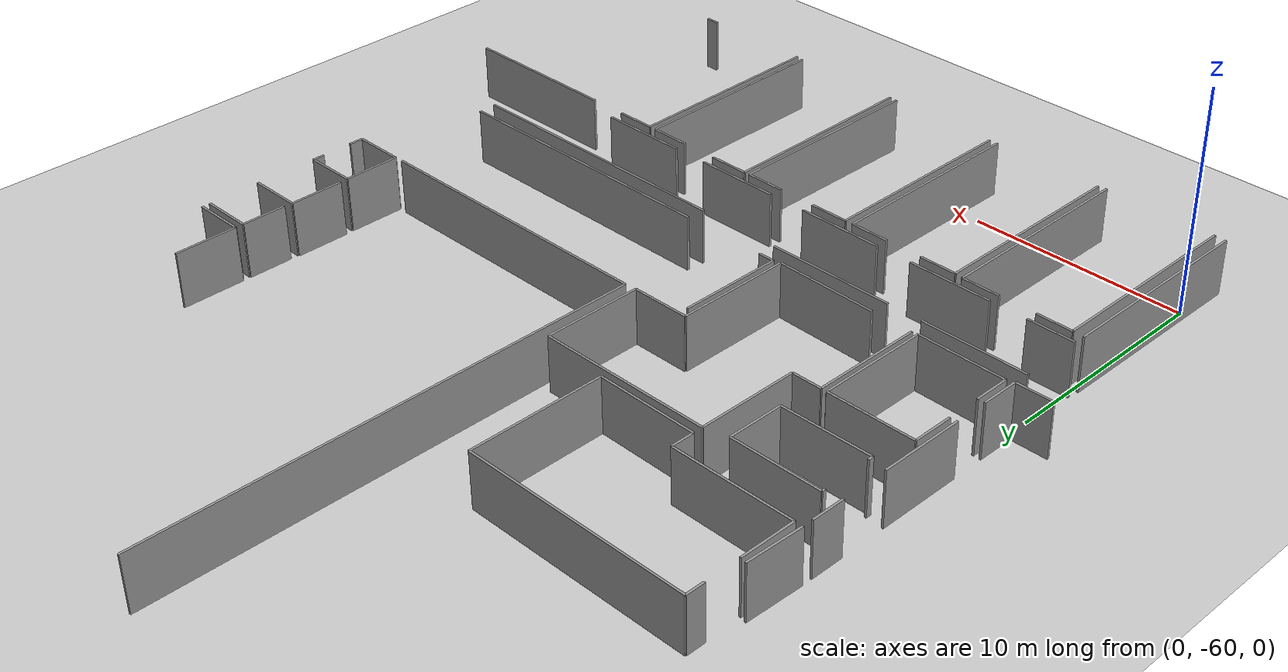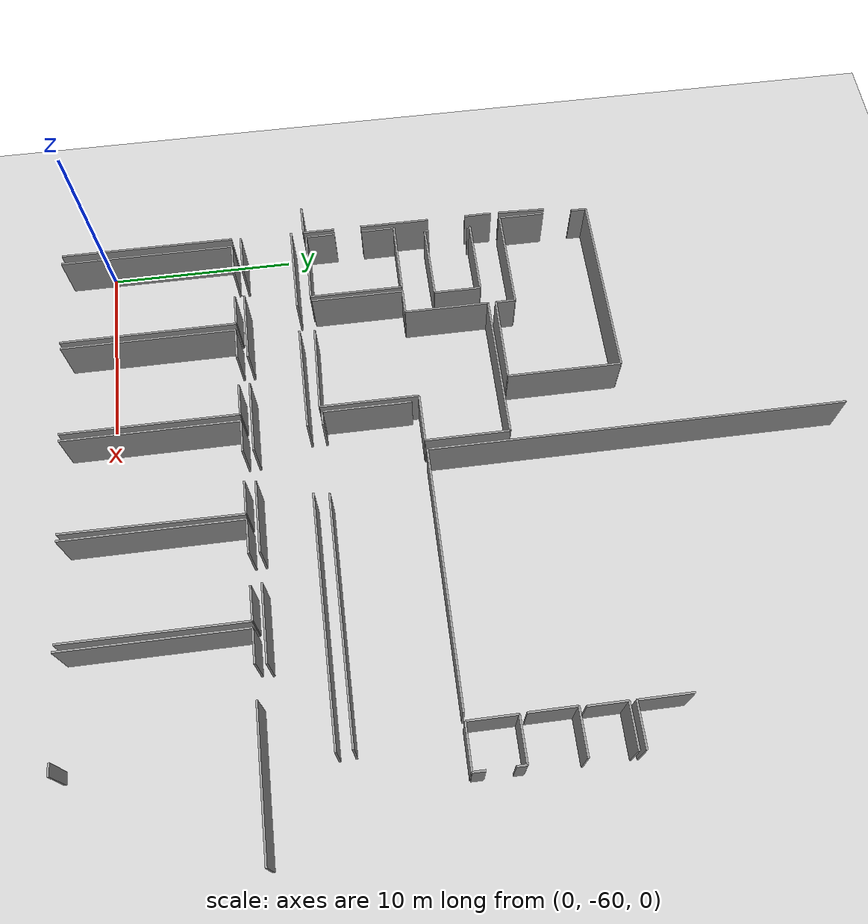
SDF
<sdf version="1.6">
 <world name="default">
  <model name="ground_plane">
   <static>1</static>
   <link name="link">
    <collision name="collision">
     <geometry><plane><normal>0 0 1</normal><size>100 100</size></plane></geometry>
     <surface><friction><ode><mu>100</mu><mu2>50</mu2></ode></friction></surface>
    </collision>
    <visual name="visual">
     <cast_shadows>0</cast_shadows>
     <geometry><plane><normal>0 0 1</normal><size>100 100</size></plane></geometry>
     <material>
      <script><uri>file://media/materials/scripts/gazebo.material</uri><name>Gazebo/Grey</name></script>
     </material>
    </visual>
   </link>
  </model>
  <model name="0510045904_A_40_1_102">
   <static>1</static>
   <link name="Wall_435">
    <collision name="Wall_435_Collision">
     <geometry><box><size>2.58362755462 0.1 2.5</size></box></geometry>
     <pose>1.29181377731 0 1.25 0 0 0</pose>
    </collision>
    <visual name="Wall_435_Visual">
     <pose>1.29181377731 0 1.25 0 0 0</pose>
     <geometry><box><size>2.58362755462 0.1 2.5</size></box></geometry>
     <material>
      <script><uri>file://media/materials/scripts/gazebo.material</uri><name>Gazebo/Grey</name></script>
      <ambient>1 1 1 1</ambient>
     </material>
    </visual>
    <pose>84.2543197024 -97.6101666942 0 0 0 -1.60579039413</pose>
   </link>
   <link name="Wall_436">
    <collision name="Wall_436_Collision">
     <geometry><box><size>1.70020440032 0.1 2.5</size></box></geometry>
     <pose>0.85010220016 0 1.25 0 0 0</pose>
    </collision>
    <visual name="Wall_436_Visual">
     <pose>0.85010220016 0 1.25 0 0 0</pose>
     <geometry><box><size>1.70020440032 0.1 2.5</size></box></geometry>
     <material>
      <script><uri>file://media/materials/scripts/gazebo.material</uri><name>Gazebo/Grey</name></script>
      <ambient>1 1 1 1</ambient>
     </material>
    </visual>
    <pose>84.157324768 -111.300417688 0 0 0 3.14159265359</pose>
   </link>
   <link name="Wall_440">
    <collision name="Wall_440_Collision">
     <geometry><box><size>1.50621453147 0.1 2.5</size></box></geometry>
     <pose>0.753107265733 0 1.25 0 0 0</pose>
    </collision>
    <visual name="Wall_440_Visual">
     <pose>0.753107265733 0 1.25 0 0 0</pose>
     <geometry><box><size>1.50621453147 0.1 2.5</size></box></geometry>
     <material>
      <script><uri>file://media/materials/scripts/gazebo.material</uri><name>Gazebo/Grey</name></script>
      <ambient>1 1 1 1</ambient>
     </material>
    </visual>
    <pose>84.1588482486 -100.636053169 0 0 0 -1.57079632679</pose>
   </link>
   <link name="Wall_441">
    <collision name="Wall_441_Collision">
     <geometry><box><size>3.82342859319 0.1 2.5</size></box></geometry>
     <pose>1.9117142966 0 1.25 0 0 0</pose>
    </collision>
    <visual name="Wall_441_Visual">
     <pose>1.9117142966 0 1.25 0 0 0</pose>
     <geometry><box><size>3.82342859319 0.1 2.5</size></box></geometry>
     <material>
      <script><uri>file://media/materials/scripts/gazebo.material</uri><name>Gazebo/Grey</name></script>
      <ambient>1 1 1 1</ambient>
     </material>
    </visual>
    <pose>84.1588482486 -104.24974926 0 0 0 -1.57079632679</pose>
   </link>
   <link name="Wall_442">
    <collision name="Wall_442_Collision">
     <geometry><box><size>1.72229554349 0.1 2.5</size></box></geometry>
     <pose>0.861147771744 0 1.25 0 0 0</pose>
    </collision>
    <visual name="Wall_442_Visual">
     <pose>0.861147771744 0 1.25 0 0 0</pose>
     <geometry><box><size>1.72229554349 0.1 2.5</size></box></geometry>
     <material>
      <script><uri>file://media/materials/scripts/gazebo.material</uri><name>Gazebo/Grey</name></script>
      <ambient>1 1 1 1</ambient>
     </material>
    </visual>
    <pose>84.1588482486 -109.578122818 0 0 0 -1.57168089092</pose>
   </link>
   <link name="Wall_451">
    <collision name="Wall_451_Collision">
     <geometry><box><size>5.01123566976 0.1 2.5</size></box></geometry>
     <pose>2.50561783488 0 1.25 0 0 0</pose>
    </collision>
    <visual name="Wall_451_Visual">
     <pose>2.50561783488 0 1.25 0 0 0</pose>
     <geometry><box><size>5.01123566976 0.1 2.5</size></box></geometry>
     <material>
      <script><uri>file://media/materials/scripts/gazebo.material</uri><name>Gazebo/Grey</name></script>
      <ambient>1 1 1 1</ambient>
     </material>
    </visual>
    <pose>88.5147333274 -111.222720175 0 0 0 1.57079632679</pose>
   </link>
   <link name="Wall_452">
    <collision name="Wall_452_Collision">
     <geometry><box><size>4.03189152818 0.1 2.5</size></box></geometry>
     <pose>2.01594576409 0 1.25 0 0 0</pose>
    </collision>
    <visual name="Wall_452_Visual">
     <pose>2.01594576409 0 1.25 0 0 0</pose>
     <geometry><box><size>4.03189152818 0.1 2.5</size></box></geometry>
     <material>
      <script><uri>file://media/materials/scripts/gazebo.material</uri><name>Gazebo/Grey</name></script>
      <ambient>1 1 1 1</ambient>
     </material>
    </visual>
    <pose>88.5147333274 -106.211484505 0 0 0 3.14159265359</pose>
   </link>
   <link name="Wall_453">
    <collision name="Wall_453_Collision">
     <geometry><box><size>1.84315766755 0.1 2.5</size></box></geometry>
     <pose>0.921578833776 0 1.25 0 0 0</pose>
    </collision>
    <visual name="Wall_453_Visual">
     <pose>0.921578833776 0 1.25 0 0 0</pose>
     <geometry><box><size>1.84315766755 0.1 2.5</size></box></geometry>
     <material>
      <script><uri>file://media/materials/scripts/gazebo.material</uri><name>Gazebo/Grey</name></script>
      <ambient>1 1 1 1</ambient>
     </material>
    </visual>
    <pose>84.4828417992 -106.211484505 0 0 0 -1.57079632679</pose>
   </link>
   <link name="Wall_454">
    <collision name="Wall_454_Collision">
     <geometry><box><size>1.60270163901 0.1 2.5</size></box></geometry>
     <pose>0.801350819506 0 1.25 0 0 0</pose>
    </collision>
    <visual name="Wall_454_Visual">
     <pose>0.801350819506 0 1.25 0 0 0</pose>
     <geometry><box><size>1.60270163901 0.1 2.5</size></box></geometry>
     <material>
      <script><uri>file://media/materials/scripts/gazebo.material</uri><name>Gazebo/Grey</name></script>
      <ambient>1 1 1 1</ambient>
     </material>
    </visual>
    <pose>84.4828417992 -109.575583684 0 0 0 -1.57079632679</pose>
   </link>
   <link name="Wall_455">
    <collision name="Wall_455_Collision">
     <geometry><box><size>4.03213637556 0.1 2.5</size></box></geometry>
     <pose>2.01606818778 0 1.25 0 0 0</pose>
    </collision>
    <visual name="Wall_455_Visual">
     <pose>2.01606818778 0 1.25 0 0 0</pose>
     <geometry><box><size>4.03213637556 0.1 2.5</size></box></geometry>
     <material>
      <script><uri>file://media/materials/scripts/gazebo.material</uri><name>Gazebo/Grey</name></script>
      <ambient>1 1 1 1</ambient>
     </material>
    </visual>
    <pose>84.4828417992 -111.178285323 0 0 0 -0.0110203989802</pose>
   </link>
   <link name="Wall_456">
    <collision name="Wall_456_Collision">
     <geometry><box><size>2.52593091015 0.1 2.5</size></box></geometry>
     <pose>1.26296545508 0 1.25 0 0 0</pose>
    </collision>
    <visual name="Wall_456_Visual">
     <pose>1.26296545508 0 1.25 0 0 0</pose>
     <geometry><box><size>2.52593091015 0.1 2.5</size></box></geometry>
     <material>
      <script><uri>file://media/materials/scripts/gazebo.material</uri><name>Gazebo/Grey</name></script>
      <ambient>1 1 1 1</ambient>
     </material>
    </visual>
    <pose>89.1050820775 -104.466845252 0 0 0 1.57079632679</pose>
   </link>
   <link name="Wall_457">
    <collision name="Wall_457_Collision">
     <geometry><box><size>4.16646565186 0.1 2.5</size></box></geometry>
     <pose>2.08323282593 0 1.25 0 0 0</pose>
    </collision>
    <visual name="Wall_457_Visual">
     <pose>2.08323282593 0 1.25 0 0 0</pose>
     <geometry><box><size>4.16646565186 0.1 2.5</size></box></geometry>
     <material>
      <script><uri>file://media/materials/scripts/gazebo.material</uri><name>Gazebo/Grey</name></script>
      <ambient>1 1 1 1</ambient>
     </material>
    </visual>
    <pose>89.1050820775 -101.940914342 0 0 0 3.14159265359</pose>
   </link>
   <link name="Wall_458">
    <collision name="Wall_458_Collision">
     <geometry><box><size>0.159711554331 0.1 2.5</size></box></geometry>
     <pose>0.0798557771656 0 1.25 0 0 0</pose>
    </collision>
    <visual name="Wall_458_Visual">
     <pose>0.0798557771656 0 1.25 0 0 0</pose>
     <geometry><box><size>0.159711554331 0.1 2.5</size></box></geometry>
     <material>
      <script><uri>file://media/materials/scripts/gazebo.material</uri><name>Gazebo/Grey</name></script>
      <ambient>1 1 1 1</ambient>
     </material>
    </visual>
    <pose>84.9386164257 -101.940914342 0 0 0 -1.57079632679</pose>
   </link>
   <link name="Wall_459">
    <collision name="Wall_459_Collision">
     <geometry><box><size>0.232330798431 0.1 2.5</size></box></geometry>
     <pose>0.116165399215 0 1.25 0 0 0</pose>
    </collision>
    <visual name="Wall_459_Visual">
     <pose>0.116165399215 0 1.25 0 0 0</pose>
     <geometry><box><size>0.232330798431 0.1 2.5</size></box></geometry>
     <material>
      <script><uri>file://media/materials/scripts/gazebo.material</uri><name>Gazebo/Grey</name></script>
      <ambient>1 1 1 1</ambient>
     </material>
    </visual>
    <pose>84.9386164257 -104.278187566 0 0 0 -1.57079632679</pose>
   </link>
   <link name="Wall_460">
    <collision name="Wall_460_Collision">
     <geometry><box><size>4.1666945375 0.1 2.5</size></box></geometry>
     <pose>2.08334726875 0 1.25 0 0 0</pose>
    </collision>
    <visual name="Wall_460_Visual">
     <pose>2.08334726875 0 1.25 0 0 0</pose>
     <geometry><box><size>4.1666945375 0.1 2.5</size></box></geometry>
     <material>
      <script><uri>file://media/materials/scripts/gazebo.material</uri><name>Gazebo/Grey</name></script>
      <ambient>1 1 1 1</ambient>
     </material>
    </visual>
    <pose>84.9386164257 -104.510518364 0 0 0 0.0104816686578</pose>
   </link>
   <link name="Wall_470">
    <collision name="Wall_470_Collision">
     <geometry><box><size>6.06472253609 0.1 2.5</size></box></geometry>
     <pose>3.03236126804 0 1.25 0 0 0</pose>
    </collision>
    <visual name="Wall_470_Visual">
     <pose>3.03236126804 0 1.25 0 0 0</pose>
     <geometry><box><size>6.06472253609 0.1 2.5</size></box></geometry>
     <material>
      <script><uri>file://media/materials/scripts/gazebo.material</uri><name>Gazebo/Grey</name></script>
      <ambient>1 1 1 1</ambient>
     </material>
    </visual>
    <pose>94.8282910356 -101.284040271 0 0 0 1.57079632679</pose>
   </link>
   <link name="Wall_471">
    <collision name="Wall_471_Collision">
     <geometry><box><size>10.2961900288 0.1 2.5</size></box></geometry>
     <pose>5.14809501441 0 1.25 0 0 0</pose>
    </collision>
    <visual name="Wall_471_Visual">
     <pose>5.14809501441 0 1.25 0 0 0</pose>
     <geometry><box><size>10.2961900288 0.1 2.5</size></box></geometry>
     <material>
      <script><uri>file://media/materials/scripts/gazebo.material</uri><name>Gazebo/Grey</name></script>
      <ambient>1 1 1 1</ambient>
     </material>
    </visual>
    <pose>94.8282910356 -95.2193177346 0 0 0 3.14159265359</pose>
   </link>
   <link name="Wall_472">
    <collision name="Wall_472_Collision">
     <geometry><box><size>0.841976970051 0.1 2.5</size></box></geometry>
     <pose>0.420988485025 0 1.25 0 0 0</pose>
    </collision>
    <visual name="Wall_472_Visual">
     <pose>0.420988485025 0 1.25 0 0 0</pose>
     <geometry><box><size>0.841976970051 0.1 2.5</size></box></geometry>
     <material>
      <script><uri>file://media/materials/scripts/gazebo.material</uri><name>Gazebo/Grey</name></script>
      <ambient>1 1 1 1</ambient>
     </material>
    </visual>
    <pose>84.5321010068 -95.2193177346 0 0 0 -1.57079632679</pose>
   </link>
   <link name="Wall_473">
    <collision name="Wall_473_Collision">
     <geometry><box><size>2.50434826768 0.1 2.5</size></box></geometry>
     <pose>1.25217413384 0 1.25 0 0 0</pose>
    </collision>
    <visual name="Wall_473_Visual">
     <pose>1.25217413384 0 1.25 0 0 0</pose>
     <geometry><box><size>2.50434826768 0.1 2.5</size></box></geometry>
     <material>
      <script><uri>file://media/materials/scripts/gazebo.material</uri><name>Gazebo/Grey</name></script>
      <ambient>1 1 1 1</ambient>
     </material>
    </visual>
    <pose>84.5321010068 -97.6718676603 0 0 0 -1.57079632679</pose>
   </link>
   <link name="Wall_474">
    <collision name="Wall_474_Collision">
     <geometry><box><size>5.62189749514 0.1 2.5</size></box></geometry>
     <pose>2.81094874757 0 1.25 0 0 0</pose>
    </collision>
    <visual name="Wall_474_Visual">
     <pose>2.81094874757 0 1.25 0 0 0</pose>
     <geometry><box><size>5.62189749514 0.1 2.5</size></box></geometry>
     <material>
      <script><uri>file://media/materials/scripts/gazebo.material</uri><name>Gazebo/Grey</name></script>
      <ambient>1 1 1 1</ambient>
     </material>
    </visual>
    <pose>84.5321010068 -100.176215928 0 0 0 0.0</pose>
   </link>
   <link name="Wall_475">
    <collision name="Wall_475_Collision">
     <geometry><box><size>1.05170947224 0.1 2.5</size></box></geometry>
     <pose>0.52585473612 0 1.25 0 0 0</pose>
    </collision>
    <visual name="Wall_475_Visual">
     <pose>0.52585473612 0 1.25 0 0 0</pose>
     <geometry><box><size>1.05170947224 0.1 2.5</size></box></geometry>
     <material>
      <script><uri>file://media/materials/scripts/gazebo.material</uri><name>Gazebo/Grey</name></script>
      <ambient>1 1 1 1</ambient>
     </material>
    </visual>
    <pose>90.1539985019 -100.176215928 0 0 0 -1.57079632679</pose>
   </link>
   <link name="Wall_476">
    <collision name="Wall_476_Collision">
     <geometry><box><size>4.67462935098 0.1 2.5</size></box></geometry>
     <pose>2.33731467549 0 1.25 0 0 0</pose>
    </collision>
    <visual name="Wall_476_Visual">
     <pose>2.33731467549 0 1.25 0 0 0</pose>
     <geometry><box><size>4.67462935098 0.1 2.5</size></box></geometry>
     <material>
      <script><uri>file://media/materials/scripts/gazebo.material</uri><name>Gazebo/Grey</name></script>
      <ambient>1 1 1 1</ambient>
     </material>
    </visual>
    <pose>90.1539985019 -101.2279254 0 0 0 -0.0120044208855</pose>
   </link>
   <link name="Wall_477">
    <collision name="Wall_477_Collision">
     <geometry><box><size>13.5663412343 0.1 2.5</size></box></geometry>
     <pose>6.78317061714 0 1.25 0 0 0</pose>
    </collision>
    <visual name="Wall_477_Visual">
     <pose>6.78317061714 0 1.25 0 0 0</pose>
     <geometry><box><size>13.5663412343 0.1 2.5</size></box></geometry>
     <material>
      <script><uri>file://media/materials/scripts/gazebo.material</uri><name>Gazebo/Grey</name></script>
      <ambient>1 1 1 1</ambient>
     </material>
    </visual>
    <pose>112.144172052 -106.02587378 0 0 0 3.14159265359</pose>
   </link>
   <link name="Wall_478">
    <collision name="Wall_478_Collision">
     <geometry><box><size>21.9934744246 0.1 2.5</size></box></geometry>
     <pose>10.9967372123 0 1.25 0 0 0</pose>
    </collision>
    <visual name="Wall_478_Visual">
     <pose>10.9967372123 0 1.25 0 0 0</pose>
     <geometry><box><size>21.9934744246 0.1 2.5</size></box></geometry>
     <material>
      <script><uri>file://media/materials/scripts/gazebo.material</uri><name>Gazebo/Grey</name></script>
      <ambient>1 1 1 1</ambient>
     </material>
    </visual>
    <pose>98.5778308175 -106.02587378 0 0 0 1.57079632679</pose>
   </link>
   <link name="Wall_497">
    <collision name="Wall_497_Collision">
     <geometry><box><size>2.40659159293 0.1 2.5</size></box></geometry>
     <pose>1.20329579646 0 1.25 0 0 0</pose>
    </collision>
    <visual name="Wall_497_Visual">
     <pose>1.20329579646 0 1.25 0 0 0</pose>
     <geometry><box><size>2.40659159293 0.1 2.5</size></box></geometry>
     <material>
      <script><uri>file://media/materials/scripts/gazebo.material</uri><name>Gazebo/Grey</name></script>
      <ambient>1 1 1 1</ambient>
     </material>
    </visual>
    <pose>112.529358742 -103.13100664 0 0 0 1.57079632679</pose>
   </link>
   <link name="Wall_498">
    <collision name="Wall_498_Collision">
     <geometry><box><size>2.38450112357 0.1 2.5</size></box></geometry>
     <pose>1.19225056178 0 1.25 0 0 0</pose>
    </collision>
    <visual name="Wall_498_Visual">
     <pose>1.19225056178 0 1.25 0 0 0</pose>
     <geometry><box><size>2.38450112357 0.1 2.5</size></box></geometry>
     <material>
      <script><uri>file://media/materials/scripts/gazebo.material</uri><name>Gazebo/Grey</name></script>
      <ambient>1 1 1 1</ambient>
     </material>
    </visual>
    <pose>112.529358742 -100.724415047 0 0 0 0.0</pose>
   </link>
   <link name="Wall_502">
    <collision name="Wall_502_Collision">
     <geometry><box><size>2.51171175746 0.1 2.5</size></box></geometry>
     <pose>1.25585587873 0 1.25 0 0 0</pose>
    </collision>
    <visual name="Wall_502_Visual">
     <pose>1.25585587873 0 1.25 0 0 0</pose>
     <geometry><box><size>2.51171175746 0.1 2.5</size></box></geometry>
     <material>
      <script><uri>file://media/materials/scripts/gazebo.material</uri><name>Gazebo/Grey</name></script>
      <ambient>1 1 1 1</ambient>
     </material>
    </visual>
    <pose>112.551195298 -106.005814618 0 0 0 1.57079632679</pose>
   </link>
   <link name="Wall_503">
    <collision name="Wall_503_Collision">
     <geometry><box><size>2.30832709129 0.1 2.5</size></box></geometry>
     <pose>1.15416354565 0 1.25 0 0 0</pose>
    </collision>
    <visual name="Wall_503_Visual">
     <pose>1.15416354565 0 1.25 0 0 0</pose>
     <geometry><box><size>2.30832709129 0.1 2.5</size></box></geometry>
     <material>
      <script><uri>file://media/materials/scripts/gazebo.material</uri><name>Gazebo/Grey</name></script>
      <ambient>1 1 1 1</ambient>
     </material>
    </visual>
    <pose>112.551195298 -103.49410286 0 0 0 0.0</pose>
   </link>
   <link name="Wall_504">
    <collision name="Wall_504_Collision">
     <geometry><box><size>0.508334708698 0.1 2.5</size></box></geometry>
     <pose>0.254167354349 0 1.25 0 0 0</pose>
    </collision>
    <visual name="Wall_504_Visual">
     <pose>0.254167354349 0 1.25 0 0 0</pose>
     <geometry><box><size>0.508334708698 0.1 2.5</size></box></geometry>
     <material>
      <script><uri>file://media/materials/scripts/gazebo.material</uri><name>Gazebo/Grey</name></script>
      <ambient>1 1 1 1</ambient>
     </material>
    </visual>
    <pose>114.859522389 -103.49410286 0 0 0 -1.57079632679</pose>
   </link>
   <link name="Wall_505">
    <collision name="Wall_505_Collision">
     <geometry><box><size>0.638846217325 0.1 2.5</size></box></geometry>
     <pose>0.319423108662 0 1.25 0 0 0</pose>
    </collision>
    <visual name="Wall_505_Visual">
     <pose>0.319423108662 0 1.25 0 0 0</pose>
     <geometry><box><size>0.638846217325 0.1 2.5</size></box></geometry>
     <material>
      <script><uri>file://media/materials/scripts/gazebo.material</uri><name>Gazebo/Grey</name></script>
      <ambient>1 1 1 1</ambient>
     </material>
    </visual>
    <pose>114.859522389 -105.381441467 0 0 0 -1.57079632679</pose>
   </link>
   <link name="Wall_506">
    <collision name="Wall_506_Collision">
     <geometry><box><size>2.30837246346 0.1 2.5</size></box></geometry>
     <pose>1.15418623173 0 1.25 0 0 0</pose>
    </collision>
    <visual name="Wall_506_Visual">
     <pose>1.15418623173 0 1.25 0 0 0</pose>
     <geometry><box><size>2.30837246346 0.1 2.5</size></box></geometry>
     <material>
      <script><uri>file://media/materials/scripts/gazebo.material</uri><name>Gazebo/Grey</name></script>
      <ambient>1 1 1 1</ambient>
     </material>
    </visual>
    <pose>114.859522389 -106.020287684 0 0 0 3.13532279845</pose>
   </link>
   <link name="Wall_510">
    <collision name="Wall_510_Collision">
     <geometry><box><size>2.76486345805 0.1 2.5</size></box></geometry>
     <pose>1.38243172902 0 1.25 0 0 0</pose>
    </collision>
    <visual name="Wall_510_Visual">
     <pose>1.38243172902 0 1.25 0 0 0</pose>
     <geometry><box><size>2.76486345805 0.1 2.5</size></box></geometry>
     <material>
      <script><uri>file://media/materials/scripts/gazebo.material</uri><name>Gazebo/Grey</name></script>
      <ambient>1 1 1 1</ambient>
     </material>
    </visual>
    <pose>112.590805794 -95.2678152018 0 0 0 -1.57079632679</pose>
   </link>
   <link name="Wall_511">
    <collision name="Wall_511_Collision">
     <geometry><box><size>2.30096449813 0.1 2.5</size></box></geometry>
     <pose>1.15048224907 0 1.25 0 0 0</pose>
    </collision>
    <visual name="Wall_511_Visual">
     <pose>1.15048224907 0 1.25 0 0 0</pose>
     <geometry><box><size>2.30096449813 0.1 2.5</size></box></geometry>
     <material>
      <script><uri>file://media/materials/scripts/gazebo.material</uri><name>Gazebo/Grey</name></script>
      <ambient>1 1 1 1</ambient>
     </material>
    </visual>
    <pose>112.590805794 -98.0326786598 0 0 0 0.000882807097961</pose>
   </link>
   <link name="Wall_512">
    <collision name="Wall_512_Collision">
     <geometry><box><size>1.98204831973 0.1 2.5</size></box></geometry>
     <pose>0.991024159864 0 1.25 0 0 0</pose>
    </collision>
    <visual name="Wall_512_Visual">
     <pose>0.991024159864 0 1.25 0 0 0</pose>
     <geometry><box><size>1.98204831973 0.1 2.5</size></box></geometry>
     <material>
      <script><uri>file://media/materials/scripts/gazebo.material</uri><name>Gazebo/Grey</name></script>
      <ambient>1 1 1 1</ambient>
     </material>
    </visual>
    <pose>112.58014143 -100.369190143 0 0 0 1.57079632679</pose>
   </link>
   <link name="Wall_513">
    <collision name="Wall_513_Collision">
     <geometry><box><size>2.31010448538 0.1 2.5</size></box></geometry>
     <pose>1.15505224269 0 1.25 0 0 0</pose>
    </collision>
    <visual name="Wall_513_Visual">
     <pose>1.15505224269 0 1.25 0 0 0</pose>
     <geometry><box><size>2.31010448538 0.1 2.5</size></box></geometry>
     <material>
      <script><uri>file://media/materials/scripts/gazebo.material</uri><name>Gazebo/Grey</name></script>
      <ambient>1 1 1 1</ambient>
     </material>
    </visual>
    <pose>112.58014143 -98.3871418234 0 0 0 0.0</pose>
   </link>
   <link name="Wall_656">
    <collision name="Wall_656_Collision">
     <geometry><box><size>4.87793111328 0.1 2.5</size></box></geometry>
     <pose>2.43896555664 0 1.25 0 0 0</pose>
    </collision>
    <visual name="Wall_656_Visual">
     <pose>2.43896555664 0 1.25 0 0 0</pose>
     <geometry><box><size>4.87793111328 0.1 2.5</size></box></geometry>
     <material>
      <script><uri>file://media/materials/scripts/gazebo.material</uri><name>Gazebo/Grey</name></script>
      <ambient>1 1 1 1</ambient>
     </material>
    </visual>
    <pose>84.1111125217 -112.001472698 0 0 0 0.0</pose>
   </link>
   <link name="Wall_657">
    <collision name="Wall_657_Collision">
     <geometry><box><size>5.80700039357 0.1 2.5</size></box></geometry>
     <pose>2.90350019678 0 1.25 0 0 0</pose>
    </collision>
    <visual name="Wall_657_Visual">
     <pose>2.90350019678 0 1.25 0 0 0</pose>
     <geometry><box><size>5.80700039357 0.1 2.5</size></box></geometry>
     <material>
      <script><uri>file://media/materials/scripts/gazebo.material</uri><name>Gazebo/Grey</name></script>
      <ambient>1 1 1 1</ambient>
     </material>
    </visual>
    <pose>90.6265314154 -112.001472698 0 0 0 0.0</pose>
   </link>
   <link name="Wall_658">
    <collision name="Wall_658_Collision">
     <geometry><box><size>12.9241941422 0.1 2.5</size></box></geometry>
     <pose>6.46209707111 0 1.25 0 0 0</pose>
    </collision>
    <visual name="Wall_658_Visual">
     <pose>6.46209707111 0 1.25 0 0 0</pose>
     <geometry><box><size>12.9241941422 0.1 2.5</size></box></geometry>
     <material>
      <script><uri>file://media/materials/scripts/gazebo.material</uri><name>Gazebo/Grey</name></script>
      <ambient>1 1 1 1</ambient>
     </material>
    </visual>
    <pose>100.287430015 -112.001472698 0 0 0 0.0</pose>
   </link>
   <link name="Wall_670">
    <collision name="Wall_670_Collision">
     <geometry><box><size>4.02960630721 0.1 2.5</size></box></geometry>
     <pose>2.0148031536 0 1.25 0 0 0</pose>
    </collision>
    <visual name="Wall_670_Visual">
     <pose>2.0148031536 0 1.25 0 0 0</pose>
     <geometry><box><size>4.02960630721 0.1 2.5</size></box></geometry>
     <material>
      <script><uri>file://media/materials/scripts/gazebo.material</uri><name>Gazebo/Grey</name></script>
      <ambient>1 1 1 1</ambient>
     </material>
    </visual>
    <pose>108.716086686 -114.833115391 0 0 0 3.14159265359</pose>
   </link>
   <link name="Wall_671">
    <collision name="Wall_671_Collision">
     <geometry><box><size>3.85669125395 0.1 2.5</size></box></geometry>
     <pose>1.92834562698 0 1.25 0 0 0</pose>
    </collision>
    <visual name="Wall_671_Visual">
     <pose>1.92834562698 0 1.25 0 0 0</pose>
     <geometry><box><size>3.85669125395 0.1 2.5</size></box></geometry>
     <material>
      <script><uri>file://media/materials/scripts/gazebo.material</uri><name>Gazebo/Grey</name></script>
      <ambient>1 1 1 1</ambient>
     </material>
    </visual>
    <pose>103.092919624 -114.833115391 0 0 0 3.14159265359</pose>
   </link>
   <link name="Wall_672">
    <collision name="Wall_672_Collision">
     <geometry><box><size>3.91280612439 0.1 2.5</size></box></geometry>
     <pose>1.9564030622 0 1.25 0 0 0</pose>
    </collision>
    <visual name="Wall_672_Visual">
     <pose>1.9564030622 0 1.25 0 0 0</pose>
     <geometry><box><size>3.91280612439 0.1 2.5</size></box></geometry>
     <material>
      <script><uri>file://media/materials/scripts/gazebo.material</uri><name>Gazebo/Grey</name></script>
      <ambient>1 1 1 1</ambient>
     </material>
    </visual>
    <pose>97.4740690898 -114.833115391 0 0 0 3.14159265359</pose>
   </link>
   <link name="Wall_673">
    <collision name="Wall_673_Collision">
     <geometry><box><size>3.86405474374 0.1 2.5</size></box></geometry>
     <pose>1.93202737187 0 1.25 0 0 0</pose>
    </collision>
    <visual name="Wall_673_Visual">
     <pose>1.93202737187 0 1.25 0 0 0</pose>
     <geometry><box><size>3.86405474374 0.1 2.5</size></box></geometry>
     <material>
      <script><uri>file://media/materials/scripts/gazebo.material</uri><name>Gazebo/Grey</name></script>
      <ambient>1 1 1 1</ambient>
     </material>
    </visual>
    <pose>91.885180342 -114.833115391 0 0 0 3.14159265359</pose>
   </link>
   <link name="Wall_674">
    <collision name="Wall_674_Collision">
     <geometry><box><size>2.16080338213 0.1 2.5</size></box></geometry>
     <pose>1.08040169106 0 1.25 0 0 0</pose>
    </collision>
    <visual name="Wall_674_Visual">
     <pose>1.08040169106 0 1.25 0 0 0</pose>
     <geometry><box><size>2.16080338213 0.1 2.5</size></box></geometry>
     <material>
      <script><uri>file://media/materials/scripts/gazebo.material</uri><name>Gazebo/Grey</name></script>
      <ambient>1 1 1 1</ambient>
     </material>
    </visual>
    <pose>86.2904515851 -114.833115391 0 0 0 3.14159265359</pose>
   </link>
   <link name="Wall_696">
    <collision name="Wall_696_Collision">
     <geometry><box><size>4.70120735841 0.1 2.5</size></box></geometry>
     <pose>2.35060367921 0 1.25 0 0 0</pose>
    </collision>
    <visual name="Wall_696_Visual">
     <pose>2.35060367921 0 1.25 0 0 0</pose>
     <geometry><box><size>4.70120735841 0.1 2.5</size></box></geometry>
     <material>
      <script><uri>file://media/materials/scripts/gazebo.material</uri><name>Gazebo/Grey</name></script>
      <ambient>1 1 1 1</ambient>
     </material>
    </visual>
    <pose>95.7235898282 -106.495867559 0 0 0 -1.57079632679</pose>
   </link>
   <link name="Wall_697">
    <collision name="Wall_697_Collision">
     <geometry><box><size>0.738634199601 0.1 2.5</size></box></geometry>
     <pose>0.369317099801 0 1.25 0 0 0</pose>
    </collision>
    <visual name="Wall_697_Visual">
     <pose>0.369317099801 0 1.25 0 0 0</pose>
     <geometry><box><size>0.738634199601 0.1 2.5</size></box></geometry>
     <material>
      <script><uri>file://media/materials/scripts/gazebo.material</uri><name>Gazebo/Grey</name></script>
      <ambient>1 1 1 1</ambient>
     </material>
    </visual>
    <pose>95.7235898282 -111.197074917 0 0 0 0.0</pose>
   </link>
   <link name="Wall_698">
    <collision name="Wall_698_Collision">
     <geometry><box><size>12.8226287659 0.1 2.5</size></box></geometry>
     <pose>6.41131438293 0 1.25 0 0 0</pose>
    </collision>
    <visual name="Wall_698_Visual">
     <pose>6.41131438293 0 1.25 0 0 0</pose>
     <geometry><box><size>12.8226287659 0.1 2.5</size></box></geometry>
     <material>
      <script><uri>file://media/materials/scripts/gazebo.material</uri><name>Gazebo/Grey</name></script>
      <ambient>1 1 1 1</ambient>
     </material>
    </visual>
    <pose>100.363604047 -111.197074917 0 0 0 0.0</pose>
   </link>
   <link name="Wall_700">
    <collision name="Wall_700_Collision">
     <geometry><box><size>5.20522553861 0.1 2.5</size></box></geometry>
     <pose>2.60261276931 0 1.25 0 0 0</pose>
    </collision>
    <visual name="Wall_700_Visual">
     <pose>2.60261276931 0 1.25 0 0 0</pose>
     <geometry><box><size>5.20522553861 0.1 2.5</size></box></geometry>
     <material>
      <script><uri>file://media/materials/scripts/gazebo.material</uri><name>Gazebo/Grey</name></script>
      <ambient>1 1 1 1</ambient>
     </material>
    </visual>
    <pose>95.4122919497 -111.288229842 0 0 0 1.57079632679</pose>
   </link>
   <link name="Wall_701">
    <collision name="Wall_701_Collision">
     <geometry><box><size>2.64069978544 0.1 2.5</size></box></geometry>
     <pose>1.32034989272 0 1.25 0 0 0</pose>
    </collision>
    <visual name="Wall_701_Visual">
     <pose>1.32034989272 0 1.25 0 0 0</pose>
     <geometry><box><size>2.64069978544 0.1 2.5</size></box></geometry>
     <material>
      <script><uri>file://media/materials/scripts/gazebo.material</uri><name>Gazebo/Grey</name></script>
      <ambient>1 1 1 1</ambient>
     </material>
    </visual>
    <pose>95.4122919497 -106.083004304 0 0 0 0.0</pose>
   </link>
   <link name="Wall_702">
    <collision name="Wall_702_Collision">
     <geometry><box><size>4.4180938718 0.1 2.5</size></box></geometry>
     <pose>2.2090469359 0 1.25 0 0 0</pose>
    </collision>
    <visual name="Wall_702_Visual">
     <pose>2.2090469359 0 1.25 0 0 0</pose>
     <geometry><box><size>4.4180938718 0.1 2.5</size></box></geometry>
     <material>
      <script><uri>file://media/materials/scripts/gazebo.material</uri><name>Gazebo/Grey</name></script>
      <ambient>1 1 1 1</ambient>
     </material>
    </visual>
    <pose>98.0529917351 -106.083004304 0 0 0 1.57079632679</pose>
   </link>
   <link name="Wall_703">
    <collision name="Wall_703_Collision">
     <geometry><box><size>7.89670801224 0.1 2.5</size></box></geometry>
     <pose>3.94835400612 0 1.25 0 0 0</pose>
    </collision>
    <visual name="Wall_703_Visual">
     <pose>3.94835400612 0 1.25 0 0 0</pose>
     <geometry><box><size>7.89670801224 0.1 2.5</size></box></geometry>
     <material>
      <script><uri>file://media/materials/scripts/gazebo.material</uri><name>Gazebo/Grey</name></script>
      <ambient>1 1 1 1</ambient>
     </material>
    </visual>
    <pose>98.0529917351 -101.664910432 0 0 0 3.14159265359</pose>
   </link>
   <link name="Wall_704">
    <collision name="Wall_704_Collision">
     <geometry><box><size>4.54505059225 0.1 2.5</size></box></geometry>
     <pose>2.27252529613 0 1.25 0 0 0</pose>
    </collision>
    <visual name="Wall_704_Visual">
     <pose>2.27252529613 0 1.25 0 0 0</pose>
     <geometry><box><size>4.54505059225 0.1 2.5</size></box></geometry>
     <material>
      <script><uri>file://media/materials/scripts/gazebo.material</uri><name>Gazebo/Grey</name></script>
      <ambient>1 1 1 1</ambient>
     </material>
    </visual>
    <pose>90.1562837229 -101.664910432 0 0 0 -1.57079632679</pose>
   </link>
   <link name="Wall_705">
    <collision name="Wall_705_Collision">
     <geometry><box><size>1.3711325809 0.1 2.5</size></box></geometry>
     <pose>0.685566290452 0 1.25 0 0 0</pose>
    </collision>
    <visual name="Wall_705_Visual">
     <pose>0.685566290452 0 1.25 0 0 0</pose>
     <geometry><box><size>1.3711325809 0.1 2.5</size></box></geometry>
     <material>
      <script><uri>file://media/materials/scripts/gazebo.material</uri><name>Gazebo/Grey</name></script>
      <ambient>1 1 1 1</ambient>
     </material>
    </visual>
    <pose>90.1562837229 -106.209961024 0 0 0 3.14159265359</pose>
   </link>
   <link name="Wall_706">
    <collision name="Wall_706_Collision">
     <geometry><box><size>4.9767034418 0.1 2.5</size></box></geometry>
     <pose>2.4883517209 0 1.25 0 0 0</pose>
    </collision>
    <visual name="Wall_706_Visual">
     <pose>2.4883517209 0 1.25 0 0 0</pose>
     <geometry><box><size>4.9767034418 0.1 2.5</size></box></geometry>
     <material>
      <script><uri>file://media/materials/scripts/gazebo.material</uri><name>Gazebo/Grey</name></script>
      <ambient>1 1 1 1</ambient>
     </material>
    </visual>
    <pose>88.785151142 -106.209961024 0 0 0 -1.57079632679</pose>
   </link>
   <link name="Wall_707">
    <collision name="Wall_707_Collision">
     <geometry><box><size>4.71372779068 0.1 2.5</size></box></geometry>
     <pose>2.35686389534 0 1.25 0 0 0</pose>
    </collision>
    <visual name="Wall_707_Visual">
     <pose>2.35686389534 0 1.25 0 0 0</pose>
     <geometry><box><size>4.71372779068 0.1 2.5</size></box></geometry>
     <material>
      <script><uri>file://media/materials/scripts/gazebo.material</uri><name>Gazebo/Grey</name></script>
      <ambient>1 1 1 1</ambient>
     </material>
    </visual>
    <pose>90.6996584864 -111.186664466 0 0 0 -0.0215483883088</pose>
   </link>
   <link name="Wall_773">
    <collision name="Wall_773_Collision">
     <geometry><box><size>9.4364588494 0.1 2.5</size></box></geometry>
     <pose>4.7182294247 0 1.25 0 0 0</pose>
    </collision>
    <visual name="Wall_773_Visual">
     <pose>4.7182294247 0 1.25 0 0 0</pose>
     <geometry><box><size>9.4364588494 0.1 2.5</size></box></geometry>
     <material>
      <script><uri>file://media/materials/scripts/gazebo.material</uri><name>Gazebo/Grey</name></script>
      <ambient>1 1 1 1</ambient>
     </material>
    </visual>
    <pose>84.101463811 -115.32596138 0 0 0 -1.57284131372</pose>
   </link>
   <link name="Wall_774">
    <collision name="Wall_774_Collision">
     <geometry><box><size>9.44456434801 0.1 2.5</size></box></geometry>
     <pose>4.72228217401 0 1.25 0 0 0</pose>
    </collision>
    <visual name="Wall_774_Visual">
     <pose>4.72228217401 0 1.25 0 0 0</pose>
     <geometry><box><size>9.44456434801 0.1 2.5</size></box></geometry>
     <material>
      <script><uri>file://media/materials/scripts/gazebo.material</uri><name>Gazebo/Grey</name></script>
      <ambient>1 1 1 1</ambient>
     </material>
    </visual>
    <pose>84.6054819912 -124.796678812 0 0 0 1.57079632679</pose>
   </link>
   <link name="Wall_775">
    <collision name="Wall_775_Collision">
     <geometry><box><size>1.65856259601 0.1 2.5</size></box></geometry>
     <pose>0.829281298005 0 1.25 0 0 0</pose>
    </collision>
    <visual name="Wall_775_Visual">
     <pose>0.829281298005 0 1.25 0 0 0</pose>
     <geometry><box><size>1.65856259601 0.1 2.5</size></box></geometry>
     <material>
      <script><uri>file://media/materials/scripts/gazebo.material</uri><name>Gazebo/Grey</name></script>
      <ambient>1 1 1 1</ambient>
     </material>
    </visual>
    <pose>84.6054819912 -115.352114464 0 0 0 0.0</pose>
   </link>
   <link name="Wall_776">
    <collision name="Wall_776_Collision">
     <geometry><box><size>1.75479579012 0.1 2.5</size></box></geometry>
     <pose>0.877397895058 0 1.25 0 0 0</pose>
    </collision>
    <visual name="Wall_776_Visual">
     <pose>0.877397895058 0 1.25 0 0 0</pose>
     <geometry><box><size>1.75479579012 0.1 2.5</size></box></geometry>
     <material>
      <script><uri>file://media/materials/scripts/gazebo.material</uri><name>Gazebo/Grey</name></script>
      <ambient>1 1 1 1</ambient>
     </material>
    </visual>
    <pose>87.9886246778 -115.352114464 0 0 0 0.0</pose>
   </link>
   <link name="Wall_777">
    <collision name="Wall_777_Collision">
     <geometry><box><size>9.44458406253 0.1 2.5</size></box></geometry>
     <pose>4.72229203127 0 1.25 0 0 0</pose>
    </collision>
    <visual name="Wall_777_Visual">
     <pose>4.72229203127 0 1.25 0 0 0</pose>
     <geometry><box><size>9.44458406253 0.1 2.5</size></box></geometry>
     <material>
      <script><uri>file://media/materials/scripts/gazebo.material</uri><name>Gazebo/Grey</name></script>
      <ambient>1 1 1 1</ambient>
     </material>
    </visual>
    <pose>89.743420468 -115.352114464 0 0 0 -1.56875309918</pose>
   </link>
   <link name="Wall_778">
    <collision name="Wall_778_Collision">
     <geometry><box><size>9.33512765498 0.1 2.5</size></box></geometry>
     <pose>4.66756382749 0 1.25 0 0 0</pose>
    </collision>
    <visual name="Wall_778_Visual">
     <pose>4.66756382749 0 1.25 0 0 0</pose>
     <geometry><box><size>9.33512765498 0.1 2.5</size></box></geometry>
     <material>
      <script><uri>file://media/materials/scripts/gazebo.material</uri><name>Gazebo/Grey</name></script>
      <ambient>1 1 1 1</ambient>
     </material>
    </visual>
    <pose>90.1347010804 -124.747927432 0 0 0 1.57079632679</pose>
   </link>
   <link name="Wall_779">
    <collision name="Wall_779_Collision">
     <geometry><box><size>1.72077138903 0.1 2.5</size></box></geometry>
     <pose>0.860385694517 0 1.25 0 0 0</pose>
    </collision>
    <visual name="Wall_779_Visual">
     <pose>0.860385694517 0 1.25 0 0 0</pose>
     <geometry><box><size>1.72077138903 0.1 2.5</size></box></geometry>
     <material>
      <script><uri>file://media/materials/scripts/gazebo.material</uri><name>Gazebo/Grey</name></script>
      <ambient>1 1 1 1</ambient>
     </material>
    </visual>
    <pose>90.1347010804 -115.412799777 0 0 0 0.0</pose>
   </link>
   <link name="Wall_780">
    <collision name="Wall_780_Collision">
     <geometry><box><size>1.76749146216 0.1 2.5</size></box></geometry>
     <pose>0.88374573108 0 1.25 0 0 0</pose>
    </collision>
    <visual name="Wall_780_Visual">
     <pose>0.88374573108 0 1.25 0 0 0</pose>
     <geometry><box><size>1.76749146216 0.1 2.5</size></box></geometry>
     <material>
      <script><uri>file://media/materials/scripts/gazebo.material</uri><name>Gazebo/Grey</name></script>
      <ambient>1 1 1 1</ambient>
     </material>
    </visual>
    <pose>93.5683725418 -115.412799777 0 0 0 0.0</pose>
   </link>
   <link name="Wall_781">
    <collision name="Wall_781_Collision">
     <geometry><box><size>9.33514315636 0.1 2.5</size></box></geometry>
     <pose>4.66757157818 0 1.25 0 0 0</pose>
    </collision>
    <visual name="Wall_781_Visual">
     <pose>4.66757157818 0 1.25 0 0 0</pose>
     <geometry><box><size>9.33514315636 0.1 2.5</size></box></geometry>
     <material>
      <script><uri>file://media/materials/scripts/gazebo.material</uri><name>Gazebo/Grey</name></script>
      <ambient>1 1 1 1</ambient>
     </material>
    </visual>
    <pose>95.335864004 -115.412799777 0 0 0 -1.5726187102</pose>
   </link>
   <link name="Wall_782">
    <collision name="Wall_782_Collision">
     <geometry><box><size>9.33258852057 0.1 2.5</size></box></geometry>
     <pose>4.66629426029 0 1.25 0 0 0</pose>
    </collision>
    <visual name="Wall_782_Visual">
     <pose>4.66629426029 0 1.25 0 0 0</pose>
     <geometry><box><size>9.33258852057 0.1 2.5</size></box></geometry>
     <material>
      <script><uri>file://media/materials/scripts/gazebo.material</uri><name>Gazebo/Grey</name></script>
      <ambient>1 1 1 1</ambient>
     </material>
    </visual>
    <pose>95.713687204 -124.734977846 0 0 0 1.57079632679</pose>
   </link>
   <link name="Wall_783">
    <collision name="Wall_783_Collision">
     <geometry><box><size>1.75555753044 0.1 2.5</size></box></geometry>
     <pose>0.877778765219 0 1.25 0 0 0</pose>
    </collision>
    <visual name="Wall_783_Visual">
     <pose>0.877778765219 0 1.25 0 0 0</pose>
     <geometry><box><size>1.75555753044 0.1 2.5</size></box></geometry>
     <material>
      <script><uri>file://media/materials/scripts/gazebo.material</uri><name>Gazebo/Grey</name></script>
      <ambient>1 1 1 1</ambient>
     </material>
    </visual>
    <pose>95.713687204 -115.402389325 0 0 0 0.0</pose>
   </link>
   <link name="Wall_784">
    <collision name="Wall_784_Collision">
     <geometry><box><size>1.80481673797 0.1 2.5</size></box></geometry>
     <pose>0.902408368987 0 1.25 0 0 0</pose>
    </collision>
    <visual name="Wall_784_Visual">
     <pose>0.902408368987 0 1.25 0 0 0</pose>
     <geometry><box><size>1.80481673797 0.1 2.5</size></box></geometry>
     <material>
      <script><uri>file://media/materials/scripts/gazebo.material</uri><name>Gazebo/Grey</name></script>
      <ambient>1 1 1 1</ambient>
     </material>
    </visual>
    <pose>99.1895082966 -115.402389325 0 0 0 0.0</pose>
   </link>
   <link name="Wall_785">
    <collision name="Wall_785_Collision">
     <geometry><box><size>9.33300922815 0.1 2.5</size></box></geometry>
     <pose>4.66650461407 0 1.25 0 0 0</pose>
    </collision>
    <visual name="Wall_785_Visual">
     <pose>4.66650461407 0 1.25 0 0 0</pose>
     <geometry><box><size>9.33300922815 0.1 2.5</size></box></geometry>
     <material>
      <script><uri>file://media/materials/scripts/gazebo.material</uri><name>Gazebo/Grey</name></script>
      <ambient>1 1 1 1</ambient>
     </material>
    </visual>
    <pose>100.994325035 -115.402389325 0 0 0 -1.5802913482</pose>
   </link>
   <link name="Wall_786">
    <collision name="Wall_786_Collision">
     <geometry><box><size>9.3793085937 0.1 2.5</size></box></geometry>
     <pose>4.68965429685 0 1.25 0 0 0</pose>
    </collision>
    <visual name="Wall_786_Visual">
     <pose>4.68965429685 0 1.25 0 0 0</pose>
     <geometry><box><size>9.3793085937 0.1 2.5</size></box></geometry>
     <material>
      <script><uri>file://media/materials/scripts/gazebo.material</uri><name>Gazebo/Grey</name></script>
      <ambient>1 1 1 1</ambient>
     </material>
    </visual>
    <pose>101.263219369 -124.771033555 0 0 0 1.57079632679</pose>
   </link>
   <link name="Wall_787">
    <collision name="Wall_787_Collision">
     <geometry><box><size>1.8236063326 0.1 2.5</size></box></geometry>
     <pose>0.911803166301 0 1.25 0 0 0</pose>
    </collision>
    <visual name="Wall_787_Visual">
     <pose>0.911803166301 0 1.25 0 0 0</pose>
     <geometry><box><size>1.8236063326 0.1 2.5</size></box></geometry>
     <material>
      <script><uri>file://media/materials/scripts/gazebo.material</uri><name>Gazebo/Grey</name></script>
      <ambient>1 1 1 1</ambient>
     </material>
    </visual>
    <pose>101.263219369 -115.391724961 0 0 0 0.0</pose>
   </link>
   <link name="Wall_788">
    <collision name="Wall_788_Collision">
     <geometry><box><size>1.80481673797 0.1 2.5</size></box></geometry>
     <pose>0.902408368987 0 1.25 0 0 0</pose>
    </collision>
    <visual name="Wall_788_Visual">
     <pose>0.902408368987 0 1.25 0 0 0</pose>
     <geometry><box><size>1.80481673797 0.1 2.5</size></box></geometry>
     <material>
      <script><uri>file://media/materials/scripts/gazebo.material</uri><name>Gazebo/Grey</name></script>
      <ambient>1 1 1 1</ambient>
     </material>
    </visual>
    <pose>104.757322229 -115.391724961 0 0 0 0.0</pose>
   </link>
   <link name="Wall_789">
    <collision name="Wall_789_Collision">
     <geometry><box><size>9.37935170644 0.1 2.5</size></box></geometry>
     <pose>4.68967585322 0 1.25 0 0 0</pose>
    </collision>
    <visual name="Wall_789_Visual">
     <pose>4.68967585322 0 1.25 0 0 0</pose>
     <geometry><box><size>9.37935170644 0.1 2.5</size></box></geometry>
     <material>
      <script><uri>file://media/materials/scripts/gazebo.material</uri><name>Gazebo/Grey</name></script>
      <ambient>1 1 1 1</ambient>
     </material>
    </visual>
    <pose>106.562138967 -115.391724961 0 0 0 -1.57382834328</pose>
   </link>
   <link name="Wall_790">
    <collision name="Wall_790_Collision">
     <geometry><box><size>0.634529688829 0.1 2.5</size></box></geometry>
     <pose>0.317264844415 0 1.25 0 0 0</pose>
    </collision>
    <visual name="Wall_790_Visual">
     <pose>0.317264844415 0 1.25 0 0 0</pose>
     <geometry><box><size>0.634529688829 0.1 2.5</size></box></geometry>
     <material>
      <script><uri>file://media/materials/scripts/gazebo.material</uri><name>Gazebo/Grey</name></script>
      <ambient>1 1 1 1</ambient>
     </material>
    </visual>
    <pose>112.659362423 -124.835019742 0 0 0 3.14159265359</pose>
   </link>
   <link name="Wall_791">
    <collision name="Wall_791_Collision">
     <geometry><box><size>9.43897825231 0.1 2.5</size></box></geometry>
     <pose>4.71948912616 0 1.25 0 0 0</pose>
    </collision>
    <visual name="Wall_791_Visual">
     <pose>4.71948912616 0 1.25 0 0 0</pose>
     <geometry><box><size>9.43897825231 0.1 2.5</size></box></geometry>
     <material>
      <script><uri>file://media/materials/scripts/gazebo.material</uri><name>Gazebo/Grey</name></script>
      <ambient>1 1 1 1</ambient>
     </material>
    </visual>
    <pose>106.899336016 -124.835019742 0 0 0 1.57079632679</pose>
   </link>
   <link name="Wall_792">
    <collision name="Wall_792_Collision">
     <geometry><box><size>1.75860449173 0.1 2.5</size></box></geometry>
     <pose>0.879302245864 0 1.25 0 0 0</pose>
    </collision>
    <visual name="Wall_792_Visual">
     <pose>0.879302245864 0 1.25 0 0 0</pose>
     <geometry><box><size>1.75860449173 0.1 2.5</size></box></geometry>
     <material>
      <script><uri>file://media/materials/scripts/gazebo.material</uri><name>Gazebo/Grey</name></script>
      <ambient>1 1 1 1</ambient>
     </material>
    </visual>
    <pose>106.899336016 -115.396041489 0 0 0 0.0</pose>
   </link>
   <link name="Wall_793">
    <collision name="Wall_793_Collision">
     <geometry><box><size>7.38050198687 0.1 2.5</size></box></geometry>
     <pose>3.69025099344 0 1.25 0 0 0</pose>
    </collision>
    <visual name="Wall_793_Visual">
     <pose>3.69025099344 0 1.25 0 0 0</pose>
     <geometry><box><size>7.38050198687 0.1 2.5</size></box></geometry>
     <material>
      <script><uri>file://media/materials/scripts/gazebo.material</uri><name>Gazebo/Grey</name></script>
      <ambient>1 1 1 1</ambient>
     </material>
    </visual>
    <pose>110.37084058 -115.396041489 0 0 0 0.0</pose>
   </link>
   <pose>-84.3 62.4479902751 0 0 0 0</pose>
  </model>
 </world>
</sdf>
